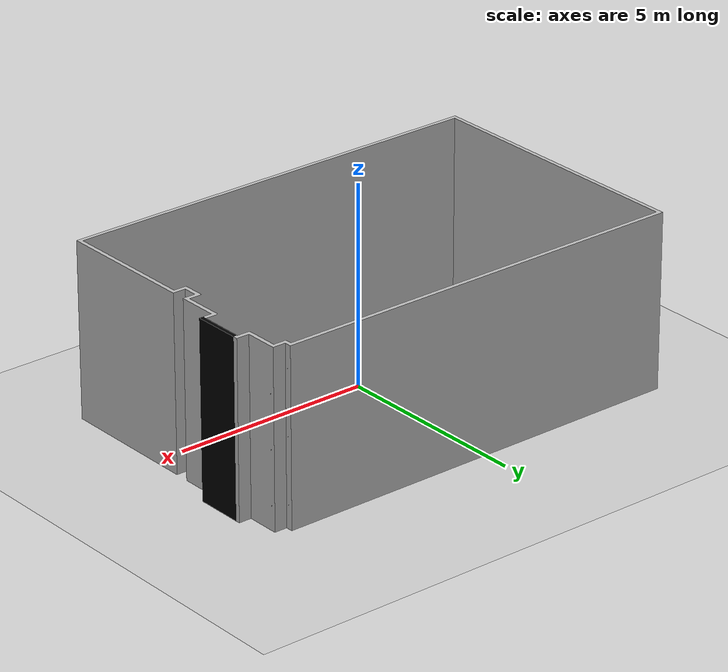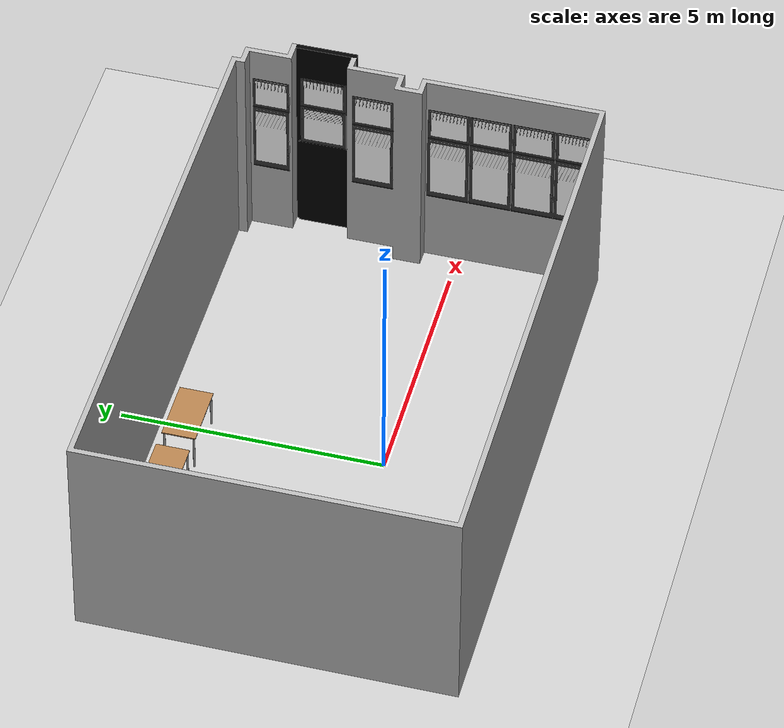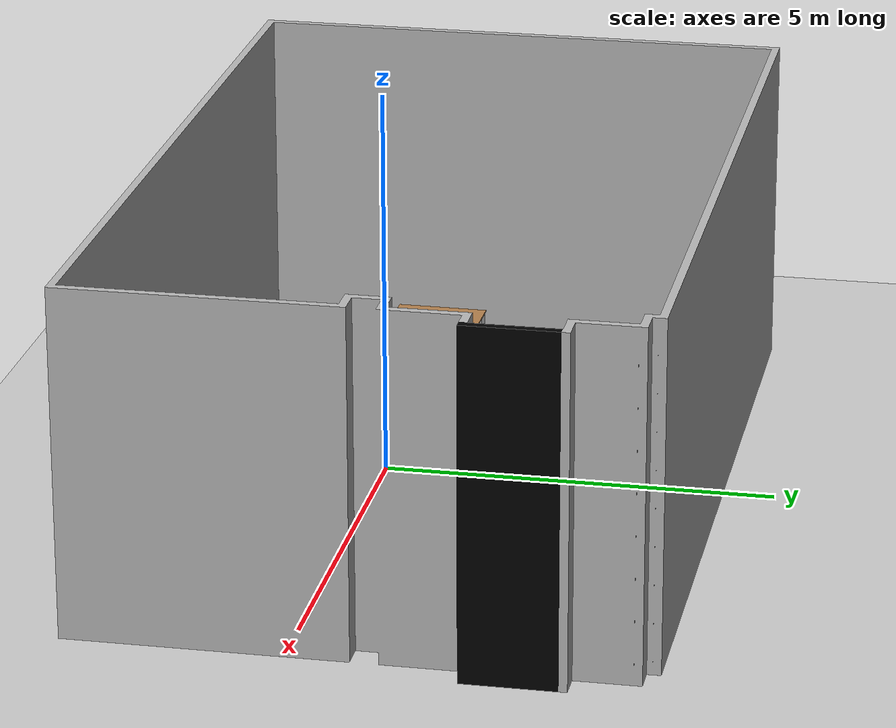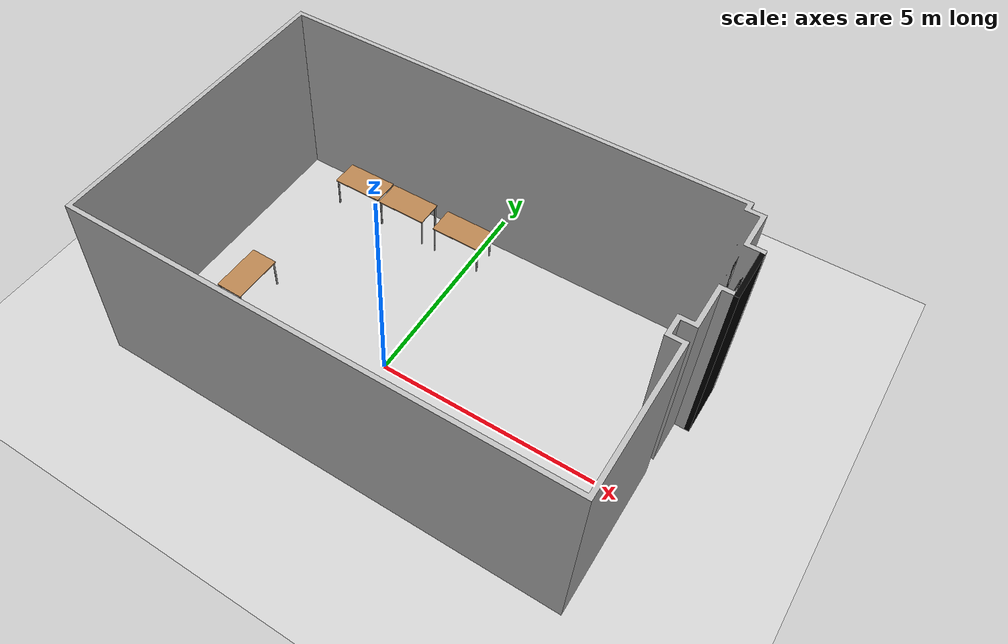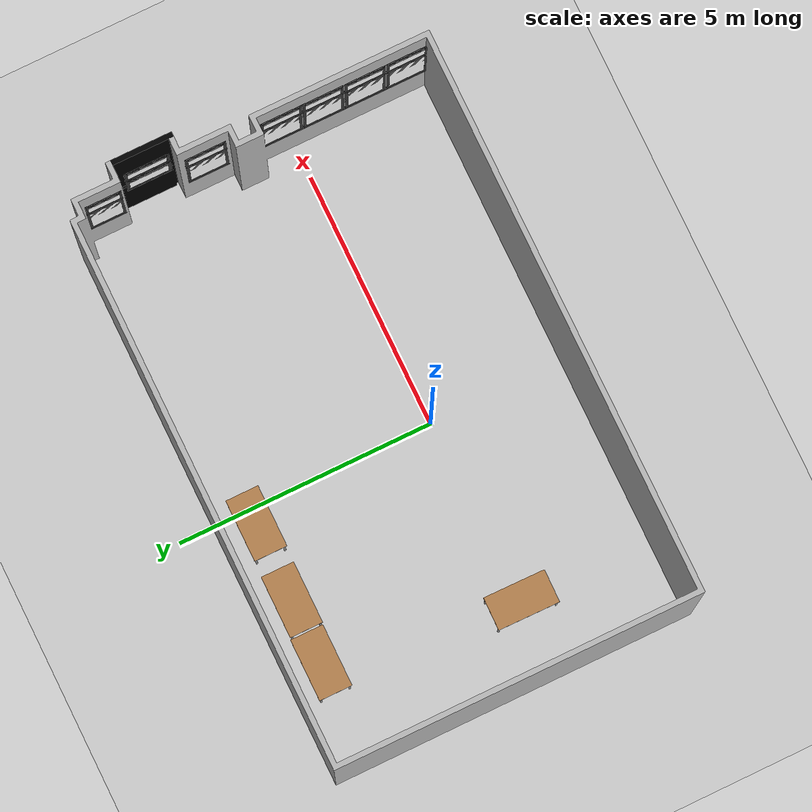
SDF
<sdf version="1.7">
 <world name="default">
  <model name="ground_plane">
   <static>1</static>
   <link name="link">
    <collision name="collision">
     <geometry><plane><normal>0 0 1</normal><size>100 100</size></plane></geometry>
     <surface>
      <contact><collide_bitmask>65535</collide_bitmask></contact>
      <friction><ode><mu>100</mu><mu2>50</mu2></ode></friction>
     </surface>
    </collision>
    <visual name="visual">
     <cast_shadows>0</cast_shadows>
     <geometry><plane><normal>0 0 1</normal><size>100 100</size></plane></geometry>
     <material>
      <script><uri>file://media/materials/scripts/gazebo.material</uri><name>Gazebo/Grey</name></script>
     </material>
    </visual>
   </link>
  </model>
  <model name="table_v2_clone_4">
   <link name="link">
    <inertial>
     <mass>1</mass>
     <inertia><ixx>1</ixx><ixy>0</ixy><ixz>0</ixz><iyy>1</iyy><iyz>0</iyz><izz>1</izz></inertia>
    </inertial>
    <visual name="visual1">
     <pose>0 0 0.75 0 -0 0</pose>
     <geometry><box><size>1.2 0.64 0.024</size></box></geometry>
     <material>
      <script><uri>file://media/materials/scripts/gazebo.material</uri><name>Gazebo/Wood</name></script>
      <shader type="pixel"><normal_map>__default__</normal_map></shader>
      <ambient>1 1 1 1</ambient>
      <diffuse>1 1 1 1</diffuse>
      <specular>0.2 0.2 0.2 1</specular>
      <emissive>0 0 0 1</emissive>
     </material>
    </visual>
    <visual name="front_left_leg">
     <pose>0.57 0.28 0.375 0 -0 0</pose>
     <geometry><cylinder><radius>0.02</radius><length>0.75</length></cylinder></geometry>
     <material>
      <script><uri>file://media/materials/scripts/gazebo.material</uri><name>Gazebo/Grey</name></script>
      <shader type="pixel"><normal_map>__default__</normal_map></shader>
      <ambient>0.3 0.3 0.3 1</ambient>
      <diffuse>0.7 0.7 0.7 1</diffuse>
      <specular>0.01 0.01 0.01 1</specular>
      <emissive>0 0 0 1</emissive>
     </material>
    </visual>
    <visual name="front_right_leg">
     <pose>0.57 -0.28 0.375 0 -0 0</pose>
     <geometry><cylinder><radius>0.02</radius><length>0.75</length></cylinder></geometry>
     <material>
      <script><uri>file://media/materials/scripts/gazebo.material</uri><name>Gazebo/Grey</name></script>
      <shader type="pixel"><normal_map>__default__</normal_map></shader>
      <ambient>0.3 0.3 0.3 1</ambient>
      <diffuse>0.7 0.7 0.7 1</diffuse>
      <specular>0.01 0.01 0.01 1</specular>
      <emissive>0 0 0 1</emissive>
     </material>
    </visual>
    <visual name="back_right_leg">
     <pose>-0.57 -0.28 0.375 0 -0 0</pose>
     <geometry><cylinder><radius>0.02</radius><length>0.75</length></cylinder></geometry>
     <material>
      <script><uri>file://media/materials/scripts/gazebo.material</uri><name>Gazebo/Grey</name></script>
      <shader type="pixel"><normal_map>__default__</normal_map></shader>
      <ambient>0.3 0.3 0.3 1</ambient>
      <diffuse>0.7 0.7 0.7 1</diffuse>
      <specular>0.01 0.01 0.01 1</specular>
      <emissive>0 0 0 1</emissive>
     </material>
    </visual>
    <visual name="back_left_leg">
     <pose>-0.57 0.28 0.375 0 -0 0</pose>
     <geometry><cylinder><radius>0.02</radius><length>0.75</length></cylinder></geometry>
     <material>
      <script><uri>file://media/materials/scripts/gazebo.material</uri><name>Gazebo/Grey</name></script>
      <shader type="pixel"><normal_map>__default__</normal_map></shader>
      <ambient>0.3 0.3 0.3 1</ambient>
      <diffuse>0.7 0.7 0.7 1</diffuse>
      <specular>0.01 0.01 0.01 1</specular>
      <emissive>0 0 0 1</emissive>
     </material>
    </visual>
    <collision name="surface">
     <pose>0 0 0.75 0 -0 0</pose>
     <geometry><box><size>1.2 0.64 0.024</size></box></geometry>
     <surface>
      <friction>
       <ode><mu>0.6</mu><mu2>0.6</mu2><fdir1>0 0 0</fdir1><slip1>0</slip1><slip2>0</slip2></ode>
       <torsional>
        <coefficient>1</coefficient>
        <patch_radius>0</patch_radius>
        <surface_radius>0</surface_radius>
        <use_patch_radius>1</use_patch_radius>
        <ode><slip>0</slip></ode>
       </torsional>
      </friction>
      <bounce><restitution_coefficient>0</restitution_coefficient><threshold>1e+06</threshold></bounce>
      <contact>
       <collide_without_contact>0</collide_without_contact>
       <collide_without_contact_bitmask>1</collide_without_contact_bitmask>
       <collide_bitmask>1</collide_bitmask>
       <ode>
        <soft_cfm>0</soft_cfm>
        <soft_erp>0.2</soft_erp>
        <kp>1e+13</kp>
        <kd>1</kd>
        <max_vel>0.01</max_vel>
        <min_depth>0</min_depth>
       </ode>
       <bullet>
        <split_impulse>1</split_impulse>
        <split_impulse_penetration_threshold>-0.01</split_impulse_penetration_threshold>
        <soft_cfm>0</soft_cfm>
        <soft_erp>0.2</soft_erp>
        <kp>1e+13</kp>
        <kd>1</kd>
       </bullet>
      </contact>
     </surface>
    </collision>
    <collision name="front_left_leg">
     <pose>0.57 0.28 0.375 0 -0 0</pose>
     <geometry><cylinder><radius>0.02</radius><length>0.75</length></cylinder></geometry>
     <surface>
      <friction>
       <ode><mu>1</mu><mu2>1</mu2><fdir1>0 0 0</fdir1><slip1>0</slip1><slip2>0</slip2></ode>
       <torsional>
        <coefficient>1</coefficient>
        <patch_radius>0</patch_radius>
        <surface_radius>0</surface_radius>
        <use_patch_radius>1</use_patch_radius>
        <ode><slip>0</slip></ode>
       </torsional>
      </friction>
      <bounce><restitution_coefficient>0</restitution_coefficient><threshold>1e+06</threshold></bounce>
      <contact>
       <collide_without_contact>0</collide_without_contact>
       <collide_without_contact_bitmask>1</collide_without_contact_bitmask>
       <collide_bitmask>1</collide_bitmask>
       <ode>
        <soft_cfm>0</soft_cfm>
        <soft_erp>0.2</soft_erp>
        <kp>1e+13</kp>
        <kd>1</kd>
        <max_vel>0.01</max_vel>
        <min_depth>0</min_depth>
       </ode>
       <bullet>
        <split_impulse>1</split_impulse>
        <split_impulse_penetration_threshold>-0.01</split_impulse_penetration_threshold>
        <soft_cfm>0</soft_cfm>
        <soft_erp>0.2</soft_erp>
        <kp>1e+13</kp>
        <kd>1</kd>
       </bullet>
      </contact>
     </surface>
    </collision>
    <collision name="front_right_leg">
     <pose>0.57 -0.28 0.375 0 -0 0</pose>
     <geometry><cylinder><radius>0.02</radius><length>0.75</length></cylinder></geometry>
     <surface>
      <friction>
       <ode><mu>1</mu><mu2>1</mu2><fdir1>0 0 0</fdir1><slip1>0</slip1><slip2>0</slip2></ode>
       <torsional>
        <coefficient>1</coefficient>
        <patch_radius>0</patch_radius>
        <surface_radius>0</surface_radius>
        <use_patch_radius>1</use_patch_radius>
        <ode><slip>0</slip></ode>
       </torsional>
      </friction>
      <bounce><restitution_coefficient>0</restitution_coefficient><threshold>1e+06</threshold></bounce>
      <contact>
       <collide_without_contact>0</collide_without_contact>
       <collide_without_contact_bitmask>1</collide_without_contact_bitmask>
       <collide_bitmask>1</collide_bitmask>
       <ode>
        <soft_cfm>0</soft_cfm>
        <soft_erp>0.2</soft_erp>
        <kp>1e+13</kp>
        <kd>1</kd>
        <max_vel>0.01</max_vel>
        <min_depth>0</min_depth>
       </ode>
       <bullet>
        <split_impulse>1</split_impulse>
        <split_impulse_penetration_threshold>-0.01</split_impulse_penetration_threshold>
        <soft_cfm>0</soft_cfm>
        <soft_erp>0.2</soft_erp>
        <kp>1e+13</kp>
        <kd>1</kd>
       </bullet>
      </contact>
     </surface>
    </collision>
    <collision name="back_right_leg">
     <pose>-0.57 -0.28 0.375 0 -0 0</pose>
     <geometry><cylinder><radius>0.02</radius><length>0.75</length></cylinder></geometry>
     <surface>
      <friction>
       <ode><mu>1</mu><mu2>1</mu2><fdir1>0 0 0</fdir1><slip1>0</slip1><slip2>0</slip2></ode>
       <torsional>
        <coefficient>1</coefficient>
        <patch_radius>0</patch_radius>
        <surface_radius>0</surface_radius>
        <use_patch_radius>1</use_patch_radius>
        <ode><slip>0</slip></ode>
       </torsional>
      </friction>
      <bounce><restitution_coefficient>0</restitution_coefficient><threshold>1e+06</threshold></bounce>
      <contact>
       <collide_without_contact>0</collide_without_contact>
       <collide_without_contact_bitmask>1</collide_without_contact_bitmask>
       <collide_bitmask>1</collide_bitmask>
       <ode>
        <soft_cfm>0</soft_cfm>
        <soft_erp>0.2</soft_erp>
        <kp>1e+13</kp>
        <kd>1</kd>
        <max_vel>0.01</max_vel>
        <min_depth>0</min_depth>
       </ode>
       <bullet>
        <split_impulse>1</split_impulse>
        <split_impulse_penetration_threshold>-0.01</split_impulse_penetration_threshold>
        <soft_cfm>0</soft_cfm>
        <soft_erp>0.2</soft_erp>
        <kp>1e+13</kp>
        <kd>1</kd>
       </bullet>
      </contact>
     </surface>
    </collision>
    <collision name="back_left_leg">
     <pose>-0.57 0.28 0.375 0 -0 0</pose>
     <geometry><cylinder><radius>0.02</radius><length>0.75</length></cylinder></geometry>
     <surface>
      <friction>
       <ode><mu>1</mu><mu2>1</mu2><fdir1>0 0 0</fdir1><slip1>0</slip1><slip2>0</slip2></ode>
       <torsional>
        <coefficient>1</coefficient>
        <patch_radius>0</patch_radius>
        <surface_radius>0</surface_radius>
        <use_patch_radius>1</use_patch_radius>
        <ode><slip>0</slip></ode>
       </torsional>
      </friction>
      <bounce><restitution_coefficient>0</restitution_coefficient><threshold>1e+06</threshold></bounce>
      <contact>
       <collide_without_contact>0</collide_without_contact>
       <collide_without_contact_bitmask>1</collide_without_contact_bitmask>
       <collide_bitmask>1</collide_bitmask>
       <ode>
        <soft_cfm>0</soft_cfm>
        <soft_erp>0.2</soft_erp>
        <kp>1e+13</kp>
        <kd>1</kd>
        <max_vel>0.01</max_vel>
        <min_depth>0</min_depth>
       </ode>
       <bullet>
        <split_impulse>1</split_impulse>
        <split_impulse_penetration_threshold>-0.01</split_impulse_penetration_threshold>
        <soft_cfm>0</soft_cfm>
        <soft_erp>0.2</soft_erp>
        <kp>1e+13</kp>
        <kd>1</kd>
       </bullet>
      </contact>
     </surface>
    </collision>
   </link>
   <static>1</static>
   <pose>-3.07826 3.65845 0 0 -0 0</pose>
  </model>
  <model name="table_v2_clone_5">
   <link name="link">
    <inertial>
     <mass>1</mass>
     <inertia><ixx>1</ixx><ixy>0</ixy><ixz>0</ixz><iyy>1</iyy><iyz>0</iyz><izz>1</izz></inertia>
    </inertial>
    <visual name="visual1">
     <pose>0 0 0.75 0 -0 0</pose>
     <geometry><box><size>1.2 0.64 0.024</size></box></geometry>
     <material>
      <script><uri>file://media/materials/scripts/gazebo.material</uri><name>Gazebo/Wood</name></script>
      <shader type="pixel"><normal_map>__default__</normal_map></shader>
      <ambient>1 1 1 1</ambient>
      <diffuse>1 1 1 1</diffuse>
      <specular>0.2 0.2 0.2 1</specular>
      <emissive>0 0 0 1</emissive>
     </material>
    </visual>
    <visual name="front_left_leg">
     <pose>0.57 0.28 0.375 0 -0 0</pose>
     <geometry><cylinder><radius>0.02</radius><length>0.75</length></cylinder></geometry>
     <material>
      <script><uri>file://media/materials/scripts/gazebo.material</uri><name>Gazebo/Grey</name></script>
      <shader type="pixel"><normal_map>__default__</normal_map></shader>
      <ambient>0.3 0.3 0.3 1</ambient>
      <diffuse>0.7 0.7 0.7 1</diffuse>
      <specular>0.01 0.01 0.01 1</specular>
      <emissive>0 0 0 1</emissive>
     </material>
    </visual>
    <visual name="front_right_leg">
     <pose>0.57 -0.28 0.375 0 -0 0</pose>
     <geometry><cylinder><radius>0.02</radius><length>0.75</length></cylinder></geometry>
     <material>
      <script><uri>file://media/materials/scripts/gazebo.material</uri><name>Gazebo/Grey</name></script>
      <shader type="pixel"><normal_map>__default__</normal_map></shader>
      <ambient>0.3 0.3 0.3 1</ambient>
      <diffuse>0.7 0.7 0.7 1</diffuse>
      <specular>0.01 0.01 0.01 1</specular>
      <emissive>0 0 0 1</emissive>
     </material>
    </visual>
    <visual name="back_right_leg">
     <pose>-0.57 -0.28 0.375 0 -0 0</pose>
     <geometry><cylinder><radius>0.02</radius><length>0.75</length></cylinder></geometry>
     <material>
      <script><uri>file://media/materials/scripts/gazebo.material</uri><name>Gazebo/Grey</name></script>
      <shader type="pixel"><normal_map>__default__</normal_map></shader>
      <ambient>0.3 0.3 0.3 1</ambient>
      <diffuse>0.7 0.7 0.7 1</diffuse>
      <specular>0.01 0.01 0.01 1</specular>
      <emissive>0 0 0 1</emissive>
     </material>
    </visual>
    <visual name="back_left_leg">
     <pose>-0.57 0.28 0.375 0 -0 0</pose>
     <geometry><cylinder><radius>0.02</radius><length>0.75</length></cylinder></geometry>
     <material>
      <script><uri>file://media/materials/scripts/gazebo.material</uri><name>Gazebo/Grey</name></script>
      <shader type="pixel"><normal_map>__default__</normal_map></shader>
      <ambient>0.3 0.3 0.3 1</ambient>
      <diffuse>0.7 0.7 0.7 1</diffuse>
      <specular>0.01 0.01 0.01 1</specular>
      <emissive>0 0 0 1</emissive>
     </material>
    </visual>
    <collision name="surface">
     <pose>0 0 0.75 0 -0 0</pose>
     <geometry><box><size>1.2 0.64 0.024</size></box></geometry>
     <surface>
      <friction>
       <ode><mu>0.6</mu><mu2>0.6</mu2><fdir1>0 0 0</fdir1><slip1>0</slip1><slip2>0</slip2></ode>
       <torsional>
        <coefficient>1</coefficient>
        <patch_radius>0</patch_radius>
        <surface_radius>0</surface_radius>
        <use_patch_radius>1</use_patch_radius>
        <ode><slip>0</slip></ode>
       </torsional>
      </friction>
      <bounce><restitution_coefficient>0</restitution_coefficient><threshold>1e+06</threshold></bounce>
      <contact>
       <collide_without_contact>0</collide_without_contact>
       <collide_without_contact_bitmask>1</collide_without_contact_bitmask>
       <collide_bitmask>1</collide_bitmask>
       <ode>
        <soft_cfm>0</soft_cfm>
        <soft_erp>0.2</soft_erp>
        <kp>1e+13</kp>
        <kd>1</kd>
        <max_vel>0.01</max_vel>
        <min_depth>0</min_depth>
       </ode>
       <bullet>
        <split_impulse>1</split_impulse>
        <split_impulse_penetration_threshold>-0.01</split_impulse_penetration_threshold>
        <soft_cfm>0</soft_cfm>
        <soft_erp>0.2</soft_erp>
        <kp>1e+13</kp>
        <kd>1</kd>
       </bullet>
      </contact>
     </surface>
    </collision>
    <collision name="front_left_leg">
     <pose>0.57 0.28 0.375 0 -0 0</pose>
     <geometry><cylinder><radius>0.02</radius><length>0.75</length></cylinder></geometry>
     <surface>
      <friction>
       <ode><mu>1</mu><mu2>1</mu2><fdir1>0 0 0</fdir1><slip1>0</slip1><slip2>0</slip2></ode>
       <torsional>
        <coefficient>1</coefficient>
        <patch_radius>0</patch_radius>
        <surface_radius>0</surface_radius>
        <use_patch_radius>1</use_patch_radius>
        <ode><slip>0</slip></ode>
       </torsional>
      </friction>
      <bounce><restitution_coefficient>0</restitution_coefficient><threshold>1e+06</threshold></bounce>
      <contact>
       <collide_without_contact>0</collide_without_contact>
       <collide_without_contact_bitmask>1</collide_without_contact_bitmask>
       <collide_bitmask>1</collide_bitmask>
       <ode>
        <soft_cfm>0</soft_cfm>
        <soft_erp>0.2</soft_erp>
        <kp>1e+13</kp>
        <kd>1</kd>
        <max_vel>0.01</max_vel>
        <min_depth>0</min_depth>
       </ode>
       <bullet>
        <split_impulse>1</split_impulse>
        <split_impulse_penetration_threshold>-0.01</split_impulse_penetration_threshold>
        <soft_cfm>0</soft_cfm>
        <soft_erp>0.2</soft_erp>
        <kp>1e+13</kp>
        <kd>1</kd>
       </bullet>
      </contact>
     </surface>
    </collision>
    <collision name="front_right_leg">
     <pose>0.57 -0.28 0.375 0 -0 0</pose>
     <geometry><cylinder><radius>0.02</radius><length>0.75</length></cylinder></geometry>
     <surface>
      <friction>
       <ode><mu>1</mu><mu2>1</mu2><fdir1>0 0 0</fdir1><slip1>0</slip1><slip2>0</slip2></ode>
       <torsional>
        <coefficient>1</coefficient>
        <patch_radius>0</patch_radius>
        <surface_radius>0</surface_radius>
        <use_patch_radius>1</use_patch_radius>
        <ode><slip>0</slip></ode>
       </torsional>
      </friction>
      <bounce><restitution_coefficient>0</restitution_coefficient><threshold>1e+06</threshold></bounce>
      <contact>
       <collide_without_contact>0</collide_without_contact>
       <collide_without_contact_bitmask>1</collide_without_contact_bitmask>
       <collide_bitmask>1</collide_bitmask>
       <ode>
        <soft_cfm>0</soft_cfm>
        <soft_erp>0.2</soft_erp>
        <kp>1e+13</kp>
        <kd>1</kd>
        <max_vel>0.01</max_vel>
        <min_depth>0</min_depth>
       </ode>
       <bullet>
        <split_impulse>1</split_impulse>
        <split_impulse_penetration_threshold>-0.01</split_impulse_penetration_threshold>
        <soft_cfm>0</soft_cfm>
        <soft_erp>0.2</soft_erp>
        <kp>1e+13</kp>
        <kd>1</kd>
       </bullet>
      </contact>
     </surface>
    </collision>
    <collision name="back_right_leg">
     <pose>-0.57 -0.28 0.375 0 -0 0</pose>
     <geometry><cylinder><radius>0.02</radius><length>0.75</length></cylinder></geometry>
     <surface>
      <friction>
       <ode><mu>1</mu><mu2>1</mu2><fdir1>0 0 0</fdir1><slip1>0</slip1><slip2>0</slip2></ode>
       <torsional>
        <coefficient>1</coefficient>
        <patch_radius>0</patch_radius>
        <surface_radius>0</surface_radius>
        <use_patch_radius>1</use_patch_radius>
        <ode><slip>0</slip></ode>
       </torsional>
      </friction>
      <bounce><restitution_coefficient>0</restitution_coefficient><threshold>1e+06</threshold></bounce>
      <contact>
       <collide_without_contact>0</collide_without_contact>
       <collide_without_contact_bitmask>1</collide_without_contact_bitmask>
       <collide_bitmask>1</collide_bitmask>
       <ode>
        <soft_cfm>0</soft_cfm>
        <soft_erp>0.2</soft_erp>
        <kp>1e+13</kp>
        <kd>1</kd>
        <max_vel>0.01</max_vel>
        <min_depth>0</min_depth>
       </ode>
       <bullet>
        <split_impulse>1</split_impulse>
        <split_impulse_penetration_threshold>-0.01</split_impulse_penetration_threshold>
        <soft_cfm>0</soft_cfm>
        <soft_erp>0.2</soft_erp>
        <kp>1e+13</kp>
        <kd>1</kd>
       </bullet>
      </contact>
     </surface>
    </collision>
    <collision name="back_left_leg">
     <pose>-0.57 0.28 0.375 0 -0 0</pose>
     <geometry><cylinder><radius>0.02</radius><length>0.75</length></cylinder></geometry>
     <surface>
      <friction>
       <ode><mu>1</mu><mu2>1</mu2><fdir1>0 0 0</fdir1><slip1>0</slip1><slip2>0</slip2></ode>
       <torsional>
        <coefficient>1</coefficient>
        <patch_radius>0</patch_radius>
        <surface_radius>0</surface_radius>
        <use_patch_radius>1</use_patch_radius>
        <ode><slip>0</slip></ode>
       </torsional>
      </friction>
      <bounce><restitution_coefficient>0</restitution_coefficient><threshold>1e+06</threshold></bounce>
      <contact>
       <collide_without_contact>0</collide_without_contact>
       <collide_without_contact_bitmask>1</collide_without_contact_bitmask>
       <collide_bitmask>1</collide_bitmask>
       <ode>
        <soft_cfm>0</soft_cfm>
        <soft_erp>0.2</soft_erp>
        <kp>1e+13</kp>
        <kd>1</kd>
        <max_vel>0.01</max_vel>
        <min_depth>0</min_depth>
       </ode>
       <bullet>
        <split_impulse>1</split_impulse>
        <split_impulse_penetration_threshold>-0.01</split_impulse_penetration_threshold>
        <soft_cfm>0</soft_cfm>
        <soft_erp>0.2</soft_erp>
        <kp>1e+13</kp>
        <kd>1</kd>
       </bullet>
      </contact>
     </surface>
    </collision>
   </link>
   <static>1</static>
   <pose>-1.84118 3.64295 0 0 -0 0</pose>
  </model>
  <model name="table_v2_clone_6">
   <link name="link">
    <inertial>
     <mass>1</mass>
     <inertia><ixx>1</ixx><ixy>0</ixy><ixz>0</ixz><iyy>1</iyy><iyz>0</iyz><izz>1</izz></inertia>
    </inertial>
    <visual name="visual1">
     <pose>0 0 0.75 0 -0 0</pose>
     <geometry><box><size>1.2 0.64 0.024</size></box></geometry>
     <material>
      <script><uri>file://media/materials/scripts/gazebo.material</uri><name>Gazebo/Wood</name></script>
      <shader type="pixel"><normal_map>__default__</normal_map></shader>
      <ambient>1 1 1 1</ambient>
      <diffuse>1 1 1 1</diffuse>
      <specular>0.2 0.2 0.2 1</specular>
      <emissive>0 0 0 1</emissive>
     </material>
    </visual>
    <visual name="front_left_leg">
     <pose>0.57 0.28 0.375 0 -0 0</pose>
     <geometry><cylinder><radius>0.02</radius><length>0.75</length></cylinder></geometry>
     <material>
      <script><uri>file://media/materials/scripts/gazebo.material</uri><name>Gazebo/Grey</name></script>
      <shader type="pixel"><normal_map>__default__</normal_map></shader>
      <ambient>0.3 0.3 0.3 1</ambient>
      <diffuse>0.7 0.7 0.7 1</diffuse>
      <specular>0.01 0.01 0.01 1</specular>
      <emissive>0 0 0 1</emissive>
     </material>
    </visual>
    <visual name="front_right_leg">
     <pose>0.57 -0.28 0.375 0 -0 0</pose>
     <geometry><cylinder><radius>0.02</radius><length>0.75</length></cylinder></geometry>
     <material>
      <script><uri>file://media/materials/scripts/gazebo.material</uri><name>Gazebo/Grey</name></script>
      <shader type="pixel"><normal_map>__default__</normal_map></shader>
      <ambient>0.3 0.3 0.3 1</ambient>
      <diffuse>0.7 0.7 0.7 1</diffuse>
      <specular>0.01 0.01 0.01 1</specular>
      <emissive>0 0 0 1</emissive>
     </material>
    </visual>
    <visual name="back_right_leg">
     <pose>-0.57 -0.28 0.375 0 -0 0</pose>
     <geometry><cylinder><radius>0.02</radius><length>0.75</length></cylinder></geometry>
     <material>
      <script><uri>file://media/materials/scripts/gazebo.material</uri><name>Gazebo/Grey</name></script>
      <shader type="pixel"><normal_map>__default__</normal_map></shader>
      <ambient>0.3 0.3 0.3 1</ambient>
      <diffuse>0.7 0.7 0.7 1</diffuse>
      <specular>0.01 0.01 0.01 1</specular>
      <emissive>0 0 0 1</emissive>
     </material>
    </visual>
    <visual name="back_left_leg">
     <pose>-0.57 0.28 0.375 0 -0 0</pose>
     <geometry><cylinder><radius>0.02</radius><length>0.75</length></cylinder></geometry>
     <material>
      <script><uri>file://media/materials/scripts/gazebo.material</uri><name>Gazebo/Grey</name></script>
      <shader type="pixel"><normal_map>__default__</normal_map></shader>
      <ambient>0.3 0.3 0.3 1</ambient>
      <diffuse>0.7 0.7 0.7 1</diffuse>
      <specular>0.01 0.01 0.01 1</specular>
      <emissive>0 0 0 1</emissive>
     </material>
    </visual>
    <collision name="surface">
     <pose>0 0 0.75 0 -0 0</pose>
     <geometry><box><size>1.2 0.64 0.024</size></box></geometry>
     <surface>
      <friction>
       <ode><mu>0.6</mu><mu2>0.6</mu2><fdir1>0 0 0</fdir1><slip1>0</slip1><slip2>0</slip2></ode>
       <torsional>
        <coefficient>1</coefficient>
        <patch_radius>0</patch_radius>
        <surface_radius>0</surface_radius>
        <use_patch_radius>1</use_patch_radius>
        <ode><slip>0</slip></ode>
       </torsional>
      </friction>
      <bounce><restitution_coefficient>0</restitution_coefficient><threshold>1e+06</threshold></bounce>
      <contact>
       <collide_without_contact>0</collide_without_contact>
       <collide_without_contact_bitmask>1</collide_without_contact_bitmask>
       <collide_bitmask>1</collide_bitmask>
       <ode>
        <soft_cfm>0</soft_cfm>
        <soft_erp>0.2</soft_erp>
        <kp>1e+13</kp>
        <kd>1</kd>
        <max_vel>0.01</max_vel>
        <min_depth>0</min_depth>
       </ode>
       <bullet>
        <split_impulse>1</split_impulse>
        <split_impulse_penetration_threshold>-0.01</split_impulse_penetration_threshold>
        <soft_cfm>0</soft_cfm>
        <soft_erp>0.2</soft_erp>
        <kp>1e+13</kp>
        <kd>1</kd>
       </bullet>
      </contact>
     </surface>
    </collision>
    <collision name="front_left_leg">
     <pose>0.57 0.28 0.375 0 -0 0</pose>
     <geometry><cylinder><radius>0.02</radius><length>0.75</length></cylinder></geometry>
     <surface>
      <friction>
       <ode><mu>1</mu><mu2>1</mu2><fdir1>0 0 0</fdir1><slip1>0</slip1><slip2>0</slip2></ode>
       <torsional>
        <coefficient>1</coefficient>
        <patch_radius>0</patch_radius>
        <surface_radius>0</surface_radius>
        <use_patch_radius>1</use_patch_radius>
        <ode><slip>0</slip></ode>
       </torsional>
      </friction>
      <bounce><restitution_coefficient>0</restitution_coefficient><threshold>1e+06</threshold></bounce>
      <contact>
       <collide_without_contact>0</collide_without_contact>
       <collide_without_contact_bitmask>1</collide_without_contact_bitmask>
       <collide_bitmask>1</collide_bitmask>
       <ode>
        <soft_cfm>0</soft_cfm>
        <soft_erp>0.2</soft_erp>
        <kp>1e+13</kp>
        <kd>1</kd>
        <max_vel>0.01</max_vel>
        <min_depth>0</min_depth>
       </ode>
       <bullet>
        <split_impulse>1</split_impulse>
        <split_impulse_penetration_threshold>-0.01</split_impulse_penetration_threshold>
        <soft_cfm>0</soft_cfm>
        <soft_erp>0.2</soft_erp>
        <kp>1e+13</kp>
        <kd>1</kd>
       </bullet>
      </contact>
     </surface>
    </collision>
    <collision name="front_right_leg">
     <pose>0.57 -0.28 0.375 0 -0 0</pose>
     <geometry><cylinder><radius>0.02</radius><length>0.75</length></cylinder></geometry>
     <surface>
      <friction>
       <ode><mu>1</mu><mu2>1</mu2><fdir1>0 0 0</fdir1><slip1>0</slip1><slip2>0</slip2></ode>
       <torsional>
        <coefficient>1</coefficient>
        <patch_radius>0</patch_radius>
        <surface_radius>0</surface_radius>
        <use_patch_radius>1</use_patch_radius>
        <ode><slip>0</slip></ode>
       </torsional>
      </friction>
      <bounce><restitution_coefficient>0</restitution_coefficient><threshold>1e+06</threshold></bounce>
      <contact>
       <collide_without_contact>0</collide_without_contact>
       <collide_without_contact_bitmask>1</collide_without_contact_bitmask>
       <collide_bitmask>1</collide_bitmask>
       <ode>
        <soft_cfm>0</soft_cfm>
        <soft_erp>0.2</soft_erp>
        <kp>1e+13</kp>
        <kd>1</kd>
        <max_vel>0.01</max_vel>
        <min_depth>0</min_depth>
       </ode>
       <bullet>
        <split_impulse>1</split_impulse>
        <split_impulse_penetration_threshold>-0.01</split_impulse_penetration_threshold>
        <soft_cfm>0</soft_cfm>
        <soft_erp>0.2</soft_erp>
        <kp>1e+13</kp>
        <kd>1</kd>
       </bullet>
      </contact>
     </surface>
    </collision>
    <collision name="back_right_leg">
     <pose>-0.57 -0.28 0.375 0 -0 0</pose>
     <geometry><cylinder><radius>0.02</radius><length>0.75</length></cylinder></geometry>
     <surface>
      <friction>
       <ode><mu>1</mu><mu2>1</mu2><fdir1>0 0 0</fdir1><slip1>0</slip1><slip2>0</slip2></ode>
       <torsional>
        <coefficient>1</coefficient>
        <patch_radius>0</patch_radius>
        <surface_radius>0</surface_radius>
        <use_patch_radius>1</use_patch_radius>
        <ode><slip>0</slip></ode>
       </torsional>
      </friction>
      <bounce><restitution_coefficient>0</restitution_coefficient><threshold>1e+06</threshold></bounce>
      <contact>
       <collide_without_contact>0</collide_without_contact>
       <collide_without_contact_bitmask>1</collide_without_contact_bitmask>
       <collide_bitmask>1</collide_bitmask>
       <ode>
        <soft_cfm>0</soft_cfm>
        <soft_erp>0.2</soft_erp>
        <kp>1e+13</kp>
        <kd>1</kd>
        <max_vel>0.01</max_vel>
        <min_depth>0</min_depth>
       </ode>
       <bullet>
        <split_impulse>1</split_impulse>
        <split_impulse_penetration_threshold>-0.01</split_impulse_penetration_threshold>
        <soft_cfm>0</soft_cfm>
        <soft_erp>0.2</soft_erp>
        <kp>1e+13</kp>
        <kd>1</kd>
       </bullet>
      </contact>
     </surface>
    </collision>
    <collision name="back_left_leg">
     <pose>-0.57 0.28 0.375 0 -0 0</pose>
     <geometry><cylinder><radius>0.02</radius><length>0.75</length></cylinder></geometry>
     <surface>
      <friction>
       <ode><mu>1</mu><mu2>1</mu2><fdir1>0 0 0</fdir1><slip1>0</slip1><slip2>0</slip2></ode>
       <torsional>
        <coefficient>1</coefficient>
        <patch_radius>0</patch_radius>
        <surface_radius>0</surface_radius>
        <use_patch_radius>1</use_patch_radius>
        <ode><slip>0</slip></ode>
       </torsional>
      </friction>
      <bounce><restitution_coefficient>0</restitution_coefficient><threshold>1e+06</threshold></bounce>
      <contact>
       <collide_without_contact>0</collide_without_contact>
       <collide_without_contact_bitmask>1</collide_without_contact_bitmask>
       <collide_bitmask>1</collide_bitmask>
       <ode>
        <soft_cfm>0</soft_cfm>
        <soft_erp>0.2</soft_erp>
        <kp>1e+13</kp>
        <kd>1</kd>
        <max_vel>0.01</max_vel>
        <min_depth>0</min_depth>
       </ode>
       <bullet>
        <split_impulse>1</split_impulse>
        <split_impulse_penetration_threshold>-0.01</split_impulse_penetration_threshold>
        <soft_cfm>0</soft_cfm>
        <soft_erp>0.2</soft_erp>
        <kp>1e+13</kp>
        <kd>1</kd>
       </bullet>
      </contact>
     </surface>
    </collision>
   </link>
   <static>1</static>
   <pose>-0.336539 3.62509 0 0 -0 0</pose>
  </model>
  <model name="table_v2_clone_11_clone">
   <link name="link">
    <inertial>
     <mass>1</mass>
     <inertia><ixx>1</ixx><ixy>0</ixy><ixz>0</ixz><iyy>1</iyy><iyz>0</iyz><izz>1</izz></inertia>
    </inertial>
    <visual name="visual1">
     <pose>0 0 0.75 0 -0 0</pose>
     <geometry><box><size>1.2 0.64 0.024</size></box></geometry>
     <material>
      <script><uri>file://media/materials/scripts/gazebo.material</uri><name>Gazebo/Wood</name></script>
      <shader type="pixel"><normal_map>__default__</normal_map></shader>
      <ambient>1 1 1 1</ambient>
      <diffuse>1 1 1 1</diffuse>
      <specular>0.2 0.2 0.2 1</specular>
      <emissive>0 0 0 1</emissive>
     </material>
    </visual>
    <visual name="front_left_leg">
     <pose>0.57 0.28 0.375 0 -0 0</pose>
     <geometry><cylinder><radius>0.02</radius><length>0.75</length></cylinder></geometry>
     <material>
      <script><uri>file://media/materials/scripts/gazebo.material</uri><name>Gazebo/Grey</name></script>
      <shader type="pixel"><normal_map>__default__</normal_map></shader>
      <ambient>0.3 0.3 0.3 1</ambient>
      <diffuse>0.7 0.7 0.7 1</diffuse>
      <specular>0.01 0.01 0.01 1</specular>
      <emissive>0 0 0 1</emissive>
     </material>
    </visual>
    <visual name="front_right_leg">
     <pose>0.57 -0.28 0.375 0 -0 0</pose>
     <geometry><cylinder><radius>0.02</radius><length>0.75</length></cylinder></geometry>
     <material>
      <script><uri>file://media/materials/scripts/gazebo.material</uri><name>Gazebo/Grey</name></script>
      <shader type="pixel"><normal_map>__default__</normal_map></shader>
      <ambient>0.3 0.3 0.3 1</ambient>
      <diffuse>0.7 0.7 0.7 1</diffuse>
      <specular>0.01 0.01 0.01 1</specular>
      <emissive>0 0 0 1</emissive>
     </material>
    </visual>
    <visual name="back_right_leg">
     <pose>-0.57 -0.28 0.375 0 -0 0</pose>
     <geometry><cylinder><radius>0.02</radius><length>0.75</length></cylinder></geometry>
     <material>
      <script><uri>file://media/materials/scripts/gazebo.material</uri><name>Gazebo/Grey</name></script>
      <shader type="pixel"><normal_map>__default__</normal_map></shader>
      <ambient>0.3 0.3 0.3 1</ambient>
      <diffuse>0.7 0.7 0.7 1</diffuse>
      <specular>0.01 0.01 0.01 1</specular>
      <emissive>0 0 0 1</emissive>
     </material>
    </visual>
    <visual name="back_left_leg">
     <pose>-0.57 0.28 0.375 0 -0 0</pose>
     <geometry><cylinder><radius>0.02</radius><length>0.75</length></cylinder></geometry>
     <material>
      <script><uri>file://media/materials/scripts/gazebo.material</uri><name>Gazebo/Grey</name></script>
      <shader type="pixel"><normal_map>__default__</normal_map></shader>
      <ambient>0.3 0.3 0.3 1</ambient>
      <diffuse>0.7 0.7 0.7 1</diffuse>
      <specular>0.01 0.01 0.01 1</specular>
      <emissive>0 0 0 1</emissive>
     </material>
    </visual>
    <collision name="surface">
     <pose>0 0 0.75 0 -0 0</pose>
     <geometry><box><size>1.2 0.64 0.024</size></box></geometry>
     <surface>
      <friction>
       <ode><mu>0.6</mu><mu2>0.6</mu2><fdir1>0 0 0</fdir1><slip1>0</slip1><slip2>0</slip2></ode>
       <torsional>
        <coefficient>1</coefficient>
        <patch_radius>0</patch_radius>
        <surface_radius>0</surface_radius>
        <use_patch_radius>1</use_patch_radius>
        <ode><slip>0</slip></ode>
       </torsional>
      </friction>
      <bounce><restitution_coefficient>0</restitution_coefficient><threshold>1e+06</threshold></bounce>
      <contact>
       <collide_without_contact>0</collide_without_contact>
       <collide_without_contact_bitmask>1</collide_without_contact_bitmask>
       <collide_bitmask>1</collide_bitmask>
       <ode>
        <soft_cfm>0</soft_cfm>
        <soft_erp>0.2</soft_erp>
        <kp>1e+13</kp>
        <kd>1</kd>
        <max_vel>0.01</max_vel>
        <min_depth>0</min_depth>
       </ode>
       <bullet>
        <split_impulse>1</split_impulse>
        <split_impulse_penetration_threshold>-0.01</split_impulse_penetration_threshold>
        <soft_cfm>0</soft_cfm>
        <soft_erp>0.2</soft_erp>
        <kp>1e+13</kp>
        <kd>1</kd>
       </bullet>
      </contact>
     </surface>
    </collision>
    <collision name="front_left_leg">
     <pose>0.57 0.28 0.375 0 -0 0</pose>
     <geometry><cylinder><radius>0.02</radius><length>0.75</length></cylinder></geometry>
     <surface>
      <friction>
       <ode><mu>1</mu><mu2>1</mu2><fdir1>0 0 0</fdir1><slip1>0</slip1><slip2>0</slip2></ode>
       <torsional>
        <coefficient>1</coefficient>
        <patch_radius>0</patch_radius>
        <surface_radius>0</surface_radius>
        <use_patch_radius>1</use_patch_radius>
        <ode><slip>0</slip></ode>
       </torsional>
      </friction>
      <bounce><restitution_coefficient>0</restitution_coefficient><threshold>1e+06</threshold></bounce>
      <contact>
       <collide_without_contact>0</collide_without_contact>
       <collide_without_contact_bitmask>1</collide_without_contact_bitmask>
       <collide_bitmask>1</collide_bitmask>
       <ode>
        <soft_cfm>0</soft_cfm>
        <soft_erp>0.2</soft_erp>
        <kp>1e+13</kp>
        <kd>1</kd>
        <max_vel>0.01</max_vel>
        <min_depth>0</min_depth>
       </ode>
       <bullet>
        <split_impulse>1</split_impulse>
        <split_impulse_penetration_threshold>-0.01</split_impulse_penetration_threshold>
        <soft_cfm>0</soft_cfm>
        <soft_erp>0.2</soft_erp>
        <kp>1e+13</kp>
        <kd>1</kd>
       </bullet>
      </contact>
     </surface>
    </collision>
    <collision name="front_right_leg">
     <pose>0.57 -0.28 0.375 0 -0 0</pose>
     <geometry><cylinder><radius>0.02</radius><length>0.75</length></cylinder></geometry>
     <surface>
      <friction>
       <ode><mu>1</mu><mu2>1</mu2><fdir1>0 0 0</fdir1><slip1>0</slip1><slip2>0</slip2></ode>
       <torsional>
        <coefficient>1</coefficient>
        <patch_radius>0</patch_radius>
        <surface_radius>0</surface_radius>
        <use_patch_radius>1</use_patch_radius>
        <ode><slip>0</slip></ode>
       </torsional>
      </friction>
      <bounce><restitution_coefficient>0</restitution_coefficient><threshold>1e+06</threshold></bounce>
      <contact>
       <collide_without_contact>0</collide_without_contact>
       <collide_without_contact_bitmask>1</collide_without_contact_bitmask>
       <collide_bitmask>1</collide_bitmask>
       <ode>
        <soft_cfm>0</soft_cfm>
        <soft_erp>0.2</soft_erp>
        <kp>1e+13</kp>
        <kd>1</kd>
        <max_vel>0.01</max_vel>
        <min_depth>0</min_depth>
       </ode>
       <bullet>
        <split_impulse>1</split_impulse>
        <split_impulse_penetration_threshold>-0.01</split_impulse_penetration_threshold>
        <soft_cfm>0</soft_cfm>
        <soft_erp>0.2</soft_erp>
        <kp>1e+13</kp>
        <kd>1</kd>
       </bullet>
      </contact>
     </surface>
    </collision>
    <collision name="back_right_leg">
     <pose>-0.57 -0.28 0.375 0 -0 0</pose>
     <geometry><cylinder><radius>0.02</radius><length>0.75</length></cylinder></geometry>
     <surface>
      <friction>
       <ode><mu>1</mu><mu2>1</mu2><fdir1>0 0 0</fdir1><slip1>0</slip1><slip2>0</slip2></ode>
       <torsional>
        <coefficient>1</coefficient>
        <patch_radius>0</patch_radius>
        <surface_radius>0</surface_radius>
        <use_patch_radius>1</use_patch_radius>
        <ode><slip>0</slip></ode>
       </torsional>
      </friction>
      <bounce><restitution_coefficient>0</restitution_coefficient><threshold>1e+06</threshold></bounce>
      <contact>
       <collide_without_contact>0</collide_without_contact>
       <collide_without_contact_bitmask>1</collide_without_contact_bitmask>
       <collide_bitmask>1</collide_bitmask>
       <ode>
        <soft_cfm>0</soft_cfm>
        <soft_erp>0.2</soft_erp>
        <kp>1e+13</kp>
        <kd>1</kd>
        <max_vel>0.01</max_vel>
        <min_depth>0</min_depth>
       </ode>
       <bullet>
        <split_impulse>1</split_impulse>
        <split_impulse_penetration_threshold>-0.01</split_impulse_penetration_threshold>
        <soft_cfm>0</soft_cfm>
        <soft_erp>0.2</soft_erp>
        <kp>1e+13</kp>
        <kd>1</kd>
       </bullet>
      </contact>
     </surface>
    </collision>
    <collision name="back_left_leg">
     <pose>-0.57 0.28 0.375 0 -0 0</pose>
     <geometry><cylinder><radius>0.02</radius><length>0.75</length></cylinder></geometry>
     <surface>
      <friction>
       <ode><mu>1</mu><mu2>1</mu2><fdir1>0 0 0</fdir1><slip1>0</slip1><slip2>0</slip2></ode>
       <torsional>
        <coefficient>1</coefficient>
        <patch_radius>0</patch_radius>
        <surface_radius>0</surface_radius>
        <use_patch_radius>1</use_patch_radius>
        <ode><slip>0</slip></ode>
       </torsional>
      </friction>
      <bounce><restitution_coefficient>0</restitution_coefficient><threshold>1e+06</threshold></bounce>
      <contact>
       <collide_without_contact>0</collide_without_contact>
       <collide_without_contact_bitmask>1</collide_without_contact_bitmask>
       <collide_bitmask>1</collide_bitmask>
       <ode>
        <soft_cfm>0</soft_cfm>
        <soft_erp>0.2</soft_erp>
        <kp>1e+13</kp>
        <kd>1</kd>
        <max_vel>0.01</max_vel>
        <min_depth>0</min_depth>
       </ode>
       <bullet>
        <split_impulse>1</split_impulse>
        <split_impulse_penetration_threshold>-0.01</split_impulse_penetration_threshold>
        <soft_cfm>0</soft_cfm>
        <soft_erp>0.2</soft_erp>
        <kp>1e+13</kp>
        <kd>1</kd>
       </bullet>
      </contact>
     </surface>
    </collision>
   </link>
   <static>1</static>
   <pose>-3.61492 -0.03357 0 0 0 -1.58295</pose>
  </model>
  <model name="LabRoboticaV2_0">
   <link name="link_0">
    <inertial>
     <mass>1</mass>
     <inertia>
      <ixx>0.166667</ixx>
      <ixy>0</ixy>
      <ixz>0</ixz>
      <iyy>0.166667</iyy>
      <iyz>0</iyz>
      <izz>0.166667</izz>
     </inertia>
    </inertial>
    <pose>0.864798 -1.22155 0 0 -0 0</pose>
    <visual name="visual">
     <geometry>
      <mesh><uri>/models/LabRoboticaV2/meshes/LabRoboticav2.dae</uri><scale>1 1 1</scale></mesh>
     </geometry>
    </visual>
    <collision name="collision">
     <geometry>
      <mesh><uri>/models/LabRoboticaV2/meshes/LabRoboticav2.dae</uri><scale>1 1 1</scale></mesh>
     </geometry>
     <surface>
      <friction>
       <ode><mu>1</mu><mu2>1</mu2><fdir1>0 0 0</fdir1><slip1>0</slip1><slip2>0</slip2></ode>
       <torsional>
        <coefficient>1</coefficient>
        <patch_radius>0</patch_radius>
        <surface_radius>0</surface_radius>
        <use_patch_radius>1</use_patch_radius>
        <ode><slip>0</slip></ode>
       </torsional>
      </friction>
      <bounce><restitution_coefficient>0</restitution_coefficient><threshold>1e+06</threshold></bounce>
      <contact>
       <collide_without_contact>0</collide_without_contact>
       <collide_without_contact_bitmask>1</collide_without_contact_bitmask>
       <collide_bitmask>1</collide_bitmask>
       <ode>
        <soft_cfm>0</soft_cfm>
        <soft_erp>0.2</soft_erp>
        <kp>1e+13</kp>
        <kd>1</kd>
        <max_vel>0.01</max_vel>
        <min_depth>0</min_depth>
       </ode>
       <bullet>
        <split_impulse>1</split_impulse>
        <split_impulse_penetration_threshold>-0.01</split_impulse_penetration_threshold>
        <soft_cfm>0</soft_cfm>
        <soft_erp>0.2</soft_erp>
        <kp>1e+13</kp>
        <kd>1</kd>
       </bullet>
      </contact>
     </surface>
    </collision>
   </link>
   <static>1</static>
   <pose>-0.707946 1.24736 0 0 -0 0</pose>
  </model>
 </world>
</sdf>
